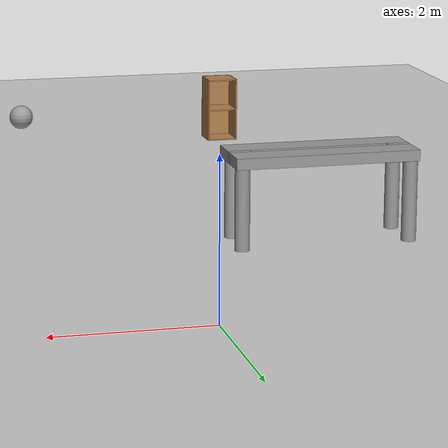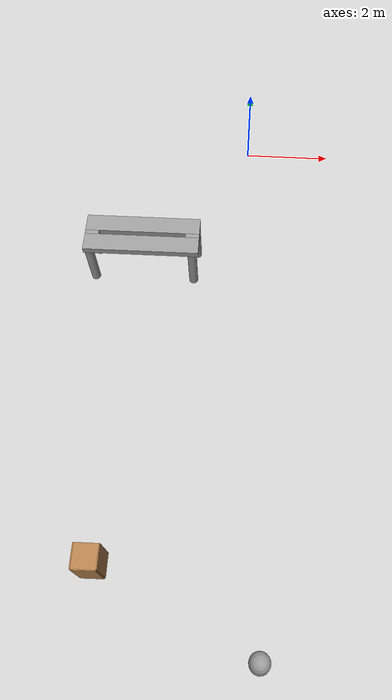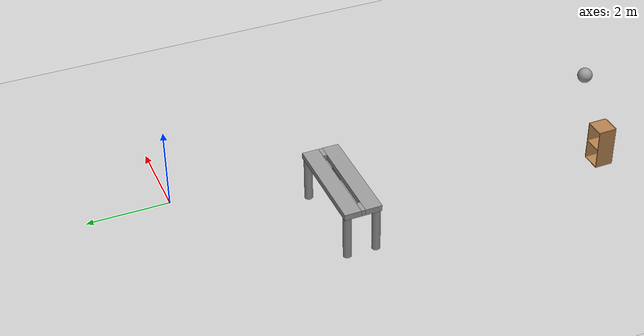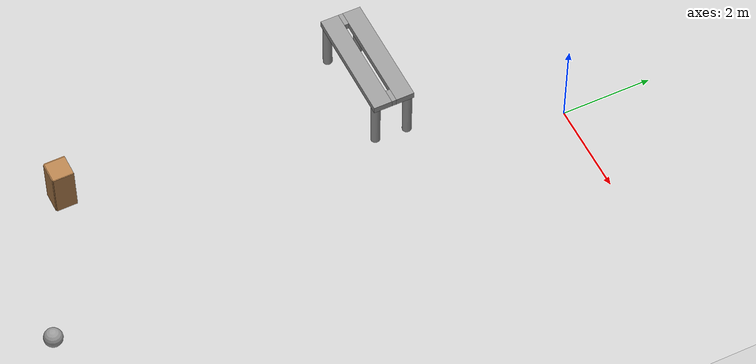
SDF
<sdf version="1.6">
 <world name="default">
  <model name="ground_plane">
   <static>1</static>
   <link name="link">
    <collision name="collision">
     <geometry><plane><normal>0 0 1</normal><size>100 100</size></plane></geometry>
     <surface><friction><ode><mu>100</mu><mu2>50</mu2></ode></friction></surface>
    </collision>
    <visual name="visual">
     <cast_shadows>0</cast_shadows>
     <geometry><plane><normal>0 0 1</normal><size>100 100</size></plane></geometry>
     <material>
      <script><uri>file://media/materials/scripts/gazebo.material</uri><name>Gazebo/Grey</name></script>
     </material>
    </visual>
   </link>
  </model>
  <model name="work_table_1">
   <link name="link_0">
    <pose>1.115 -0.35 -0.3125 0 -0 0</pose>
    <inertial>
     <mass>1</mass>
     <inertia><ixx>0.145833</ixx><ixy>0</ixy><ixz>0</ixz><iyy>0.145833</iyy><iyz>0</iyz><izz>0.125</izz></inertia>
    </inertial>
    <visual name="visual">
     <geometry><cylinder><radius>0.1</radius><length>1.1</length></cylinder></geometry>
     <material>
      <lighting>1</lighting>
      <script><uri>file://media/materials/scripts/gazebo.material</uri><name>Gazebo/Grey</name></script>
      <ambient>0.3 0.3 0.3 1</ambient>
      <diffuse>0.7 0.7 0.7 1</diffuse>
      <specular>0.01 0.01 0.01 1</specular>
      <emissive>0 0 0 1</emissive>
      <shader type="vertex"><normal_map>__default__</normal_map></shader>
     </material>
    </visual>
    <collision name="collision">
     <geometry><cylinder><radius>0.1</radius><length>1.1</length></cylinder></geometry>
     <surface>
      <friction>
       <ode><mu>1</mu><mu2>1</mu2><fdir1>0 0 0</fdir1><slip1>0</slip1><slip2>0</slip2></ode>
       <torsional>
        <coefficient>1</coefficient>
        <patch_radius>0</patch_radius>
        <surface_radius>0</surface_radius>
        <use_patch_radius>1</use_patch_radius>
        <ode><slip>0</slip></ode>
       </torsional>
      </friction>
      <bounce><restitution_coefficient>0</restitution_coefficient><threshold>1e+06</threshold></bounce>
      <contact>
       <collide_without_contact>0</collide_without_contact>
       <collide_without_contact_bitmask>1</collide_without_contact_bitmask>
       <collide_bitmask>1</collide_bitmask>
       <ode>
        <soft_cfm>0</soft_cfm>
        <soft_erp>0.2</soft_erp>
        <kp>1e+13</kp>
        <kd>1</kd>
        <max_vel>0.01</max_vel>
        <min_depth>0</min_depth>
       </ode>
       <bullet>
        <split_impulse>1</split_impulse>
        <split_impulse_penetration_threshold>-0.01</split_impulse_penetration_threshold>
        <soft_cfm>0</soft_cfm>
        <soft_erp>0.2</soft_erp>
        <kp>1e+13</kp>
        <kd>1</kd>
       </bullet>
      </contact>
     </surface>
    </collision>
   </link>
   <link name="link_0_clone">
    <pose>-1.145 -0.35 -0.3125 0 -0 0</pose>
    <inertial>
     <mass>1</mass>
     <inertia><ixx>0.145833</ixx><ixy>0</ixy><ixz>0</ixz><iyy>0.145833</iyy><iyz>0</iyz><izz>0.125</izz></inertia>
    </inertial>
    <visual name="visual">
     <geometry><cylinder><radius>0.1</radius><length>1.1</length></cylinder></geometry>
     <material>
      <lighting>1</lighting>
      <script><uri>file://media/materials/scripts/gazebo.material</uri><name>Gazebo/Grey</name></script>
      <ambient>0.3 0.3 0.3 1</ambient>
      <diffuse>0.7 0.7 0.7 1</diffuse>
      <specular>0.01 0.01 0.01 1</specular>
      <emissive>0 0 0 1</emissive>
      <shader type="vertex"><normal_map>__default__</normal_map></shader>
     </material>
    </visual>
    <collision name="collision">
     <geometry><cylinder><radius>0.1</radius><length>1.1</length></cylinder></geometry>
     <surface>
      <friction>
       <ode><mu>1</mu><mu2>1</mu2><fdir1>0 0 0</fdir1><slip1>0</slip1><slip2>0</slip2></ode>
       <torsional>
        <coefficient>1</coefficient>
        <patch_radius>0</patch_radius>
        <surface_radius>0</surface_radius>
        <use_patch_radius>1</use_patch_radius>
        <ode><slip>0</slip></ode>
       </torsional>
      </friction>
      <bounce><restitution_coefficient>0</restitution_coefficient><threshold>1e+06</threshold></bounce>
      <contact>
       <collide_without_contact>0</collide_without_contact>
       <collide_without_contact_bitmask>1</collide_without_contact_bitmask>
       <collide_bitmask>1</collide_bitmask>
       <ode>
        <soft_cfm>0</soft_cfm>
        <soft_erp>0.2</soft_erp>
        <kp>1e+13</kp>
        <kd>1</kd>
        <max_vel>0.01</max_vel>
        <min_depth>0</min_depth>
       </ode>
       <bullet>
        <split_impulse>1</split_impulse>
        <split_impulse_penetration_threshold>-0.01</split_impulse_penetration_threshold>
        <soft_cfm>0</soft_cfm>
        <soft_erp>0.2</soft_erp>
        <kp>1e+13</kp>
        <kd>1</kd>
       </bullet>
      </contact>
     </surface>
    </collision>
   </link>
   <link name="link_0_clone_0">
    <pose>-1.145 0.35 -0.3125 0 -0 0</pose>
    <inertial>
     <mass>1</mass>
     <inertia><ixx>0.145833</ixx><ixy>0</ixy><ixz>0</ixz><iyy>0.145833</iyy><iyz>0</iyz><izz>0.125</izz></inertia>
    </inertial>
    <visual name="visual">
     <geometry><cylinder><radius>0.1</radius><length>1.1</length></cylinder></geometry>
     <material>
      <lighting>1</lighting>
      <script><uri>file://media/materials/scripts/gazebo.material</uri><name>Gazebo/Grey</name></script>
      <ambient>0.3 0.3 0.3 1</ambient>
      <diffuse>0.7 0.7 0.7 1</diffuse>
      <specular>0.01 0.01 0.01 1</specular>
      <emissive>0 0 0 1</emissive>
      <shader type="vertex"><normal_map>__default__</normal_map></shader>
     </material>
    </visual>
    <collision name="collision">
     <geometry><cylinder><radius>0.1</radius><length>1.1</length></cylinder></geometry>
     <surface>
      <friction>
       <ode><mu>1</mu><mu2>1</mu2><fdir1>0 0 0</fdir1><slip1>0</slip1><slip2>0</slip2></ode>
       <torsional>
        <coefficient>1</coefficient>
        <patch_radius>0</patch_radius>
        <surface_radius>0</surface_radius>
        <use_patch_radius>1</use_patch_radius>
        <ode><slip>0</slip></ode>
       </torsional>
      </friction>
      <bounce><restitution_coefficient>0</restitution_coefficient><threshold>1e+06</threshold></bounce>
      <contact>
       <collide_without_contact>0</collide_without_contact>
       <collide_without_contact_bitmask>1</collide_without_contact_bitmask>
       <collide_bitmask>1</collide_bitmask>
       <ode>
        <soft_cfm>0</soft_cfm>
        <soft_erp>0.2</soft_erp>
        <kp>1e+13</kp>
        <kd>1</kd>
        <max_vel>0.01</max_vel>
        <min_depth>0</min_depth>
       </ode>
       <bullet>
        <split_impulse>1</split_impulse>
        <split_impulse_penetration_threshold>-0.01</split_impulse_penetration_threshold>
        <soft_cfm>0</soft_cfm>
        <soft_erp>0.2</soft_erp>
        <kp>1e+13</kp>
        <kd>1</kd>
       </bullet>
      </contact>
     </surface>
    </collision>
   </link>
   <link name="link_0_clone_1">
    <pose>1.155 0.35 -0.3125 0 -0 0</pose>
    <inertial>
     <mass>1</mass>
     <inertia><ixx>0.145833</ixx><ixy>0</ixy><ixz>0</ixz><iyy>0.145833</iyy><iyz>0</iyz><izz>0.125</izz></inertia>
    </inertial>
    <visual name="visual">
     <geometry><cylinder><radius>0.1</radius><length>1.1</length></cylinder></geometry>
     <material>
      <lighting>1</lighting>
      <script><uri>file://media/materials/scripts/gazebo.material</uri><name>Gazebo/Grey</name></script>
      <ambient>0.3 0.3 0.3 1</ambient>
      <diffuse>0.7 0.7 0.7 1</diffuse>
      <specular>0.01 0.01 0.01 1</specular>
      <emissive>0 0 0 1</emissive>
      <shader type="vertex"><normal_map>__default__</normal_map></shader>
     </material>
    </visual>
    <collision name="collision">
     <geometry><cylinder><radius>0.1</radius><length>1.1</length></cylinder></geometry>
     <surface>
      <friction>
       <ode><mu>1</mu><mu2>1</mu2><fdir1>0 0 0</fdir1><slip1>0</slip1><slip2>0</slip2></ode>
       <torsional>
        <coefficient>1</coefficient>
        <patch_radius>0</patch_radius>
        <surface_radius>0</surface_radius>
        <use_patch_radius>1</use_patch_radius>
        <ode><slip>0</slip></ode>
       </torsional>
      </friction>
      <bounce><restitution_coefficient>0</restitution_coefficient><threshold>1e+06</threshold></bounce>
      <contact>
       <collide_without_contact>0</collide_without_contact>
       <collide_without_contact_bitmask>1</collide_without_contact_bitmask>
       <collide_bitmask>1</collide_bitmask>
       <ode>
        <soft_cfm>0</soft_cfm>
        <soft_erp>0.2</soft_erp>
        <kp>1e+13</kp>
        <kd>1</kd>
        <max_vel>0.01</max_vel>
        <min_depth>0</min_depth>
       </ode>
       <bullet>
        <split_impulse>1</split_impulse>
        <split_impulse_penetration_threshold>-0.01</split_impulse_penetration_threshold>
        <soft_cfm>0</soft_cfm>
        <soft_erp>0.2</soft_erp>
        <kp>1e+13</kp>
        <kd>1</kd>
       </bullet>
      </contact>
     </surface>
    </collision>
   </link>
   <link name="link_1">
    <pose>0.005 -0.25 0.3125 0 -0 0</pose>
    <inertial>
     <mass>1</mass>
     <inertia>
      <ixx>0.166667</ixx>
      <ixy>0</ixy>
      <ixz>0</ixz>
      <iyy>0.166667</iyy>
      <iyz>0</iyz>
      <izz>0.166667</izz>
     </inertia>
    </inertial>
    <visual name="visual">
     <geometry><box><size>2.5 0.4 0.15</size></box></geometry>
     <material>
      <lighting>1</lighting>
      <script><uri>file://media/materials/scripts/gazebo.material</uri><name>Gazebo/Grey</name></script>
      <ambient>0.3 0.3 0.3 1</ambient>
      <diffuse>0.7 0.7 0.7 1</diffuse>
      <specular>0.01 0.01 0.01 1</specular>
      <emissive>0 0 0 1</emissive>
      <shader type="vertex"><normal_map>__default__</normal_map></shader>
     </material>
    </visual>
    <collision name="collision">
     <geometry><box><size>2.5 0.4 0.15</size></box></geometry>
     <surface>
      <friction>
       <ode><mu>1</mu><mu2>1</mu2><fdir1>0 0 0</fdir1><slip1>0</slip1><slip2>0</slip2></ode>
       <torsional>
        <coefficient>1</coefficient>
        <patch_radius>0</patch_radius>
        <surface_radius>0</surface_radius>
        <use_patch_radius>1</use_patch_radius>
        <ode><slip>0</slip></ode>
       </torsional>
      </friction>
      <bounce><restitution_coefficient>0</restitution_coefficient><threshold>1e+06</threshold></bounce>
      <contact>
       <collide_without_contact>0</collide_without_contact>
       <collide_without_contact_bitmask>1</collide_without_contact_bitmask>
       <collide_bitmask>1</collide_bitmask>
       <ode>
        <soft_cfm>0</soft_cfm>
        <soft_erp>0.2</soft_erp>
        <kp>1e+13</kp>
        <kd>1</kd>
        <max_vel>0.01</max_vel>
        <min_depth>0</min_depth>
       </ode>
       <bullet>
        <split_impulse>1</split_impulse>
        <split_impulse_penetration_threshold>-0.01</split_impulse_penetration_threshold>
        <soft_cfm>0</soft_cfm>
        <soft_erp>0.2</soft_erp>
        <kp>1e+13</kp>
        <kd>1</kd>
       </bullet>
      </contact>
     </surface>
    </collision>
   </link>
   <link name="link_1_clone">
    <pose>0.005 0.25 0.3125 0 -0 0</pose>
    <inertial>
     <mass>1</mass>
     <inertia>
      <ixx>0.166667</ixx>
      <ixy>0</ixy>
      <ixz>0</ixz>
      <iyy>0.166667</iyy>
      <iyz>0</iyz>
      <izz>0.166667</izz>
     </inertia>
    </inertial>
    <visual name="visual">
     <geometry><box><size>2.5 0.4 0.15</size></box></geometry>
     <material>
      <lighting>1</lighting>
      <script><uri>file://media/materials/scripts/gazebo.material</uri><name>Gazebo/Grey</name></script>
      <ambient>0.3 0.3 0.3 1</ambient>
      <diffuse>0.7 0.7 0.7 1</diffuse>
      <specular>0.01 0.01 0.01 1</specular>
      <emissive>0 0 0 1</emissive>
      <shader type="vertex"><normal_map>__default__</normal_map></shader>
     </material>
    </visual>
    <collision name="collision">
     <geometry><box><size>2.5 0.4 0.15</size></box></geometry>
     <surface>
      <friction>
       <ode><mu>1</mu><mu2>1</mu2><fdir1>0 0 0</fdir1><slip1>0</slip1><slip2>0</slip2></ode>
       <torsional>
        <coefficient>1</coefficient>
        <patch_radius>0</patch_radius>
        <surface_radius>0</surface_radius>
        <use_patch_radius>1</use_patch_radius>
        <ode><slip>0</slip></ode>
       </torsional>
      </friction>
      <bounce><restitution_coefficient>0</restitution_coefficient><threshold>1e+06</threshold></bounce>
      <contact>
       <collide_without_contact>0</collide_without_contact>
       <collide_without_contact_bitmask>1</collide_without_contact_bitmask>
       <collide_bitmask>1</collide_bitmask>
       <ode>
        <soft_cfm>0</soft_cfm>
        <soft_erp>0.2</soft_erp>
        <kp>1e+13</kp>
        <kd>1</kd>
        <max_vel>0.01</max_vel>
        <min_depth>0</min_depth>
       </ode>
       <bullet>
        <split_impulse>1</split_impulse>
        <split_impulse_penetration_threshold>-0.01</split_impulse_penetration_threshold>
        <soft_cfm>0</soft_cfm>
        <soft_erp>0.2</soft_erp>
        <kp>1e+13</kp>
        <kd>1</kd>
       </bullet>
      </contact>
     </surface>
    </collision>
   </link>
   <link name="link_1_clone_0">
    <pose>-1.095 0 0.3125 0 -0 0</pose>
    <inertial>
     <mass>1</mass>
     <inertia>
      <ixx>0.166667</ixx>
      <ixy>0</ixy>
      <ixz>0</ixz>
      <iyy>0.166667</iyy>
      <iyz>0</iyz>
      <izz>0.166667</izz>
     </inertia>
    </inertial>
    <visual name="visual">
     <geometry><box><size>0.3 0.1 0.15</size></box></geometry>
     <material>
      <lighting>1</lighting>
      <script><uri>file://media/materials/scripts/gazebo.material</uri><name>Gazebo/Grey</name></script>
      <ambient>0.3 0.3 0.3 1</ambient>
      <diffuse>0.7 0.7 0.7 1</diffuse>
      <specular>0.01 0.01 0.01 1</specular>
      <emissive>0 0 0 1</emissive>
      <shader type="vertex"><normal_map>__default__</normal_map></shader>
     </material>
    </visual>
    <collision name="collision">
     <geometry><box><size>0.3 0.1 0.15</size></box></geometry>
     <surface>
      <friction>
       <ode><mu>1</mu><mu2>1</mu2><fdir1>0 0 0</fdir1><slip1>0</slip1><slip2>0</slip2></ode>
       <torsional>
        <coefficient>1</coefficient>
        <patch_radius>0</patch_radius>
        <surface_radius>0</surface_radius>
        <use_patch_radius>1</use_patch_radius>
        <ode><slip>0</slip></ode>
       </torsional>
      </friction>
      <bounce><restitution_coefficient>0</restitution_coefficient><threshold>1e+06</threshold></bounce>
      <contact>
       <collide_without_contact>0</collide_without_contact>
       <collide_without_contact_bitmask>1</collide_without_contact_bitmask>
       <collide_bitmask>1</collide_bitmask>
       <ode>
        <soft_cfm>0</soft_cfm>
        <soft_erp>0.2</soft_erp>
        <kp>1e+13</kp>
        <kd>1</kd>
        <max_vel>0.01</max_vel>
        <min_depth>0</min_depth>
       </ode>
       <bullet>
        <split_impulse>1</split_impulse>
        <split_impulse_penetration_threshold>-0.01</split_impulse_penetration_threshold>
        <soft_cfm>0</soft_cfm>
        <soft_erp>0.2</soft_erp>
        <kp>1e+13</kp>
        <kd>1</kd>
       </bullet>
      </contact>
     </surface>
    </collision>
   </link>
   <link name="link_1_clone_0_clone">
    <pose>1.105 0 0.3125 0 -0 0</pose>
    <inertial>
     <mass>1</mass>
     <inertia>
      <ixx>0.166667</ixx>
      <ixy>0</ixy>
      <ixz>0</ixz>
      <iyy>0.166667</iyy>
      <iyz>0</iyz>
      <izz>0.166667</izz>
     </inertia>
    </inertial>
    <visual name="visual">
     <geometry><box><size>0.3 0.1 0.15</size></box></geometry>
     <material>
      <lighting>1</lighting>
      <script><uri>file://media/materials/scripts/gazebo.material</uri><name>Gazebo/Grey</name></script>
      <ambient>0.3 0.3 0.3 1</ambient>
      <diffuse>0.7 0.7 0.7 1</diffuse>
      <specular>0.01 0.01 0.01 1</specular>
      <emissive>0 0 0 1</emissive>
      <shader type="vertex"><normal_map>__default__</normal_map></shader>
     </material>
    </visual>
    <collision name="collision">
     <geometry><box><size>0.3 0.1 0.15</size></box></geometry>
     <surface>
      <friction>
       <ode><mu>1</mu><mu2>1</mu2><fdir1>0 0 0</fdir1><slip1>0</slip1><slip2>0</slip2></ode>
       <torsional>
        <coefficient>1</coefficient>
        <patch_radius>0</patch_radius>
        <surface_radius>0</surface_radius>
        <use_patch_radius>1</use_patch_radius>
        <ode><slip>0</slip></ode>
       </torsional>
      </friction>
      <bounce><restitution_coefficient>0</restitution_coefficient><threshold>1e+06</threshold></bounce>
      <contact>
       <collide_without_contact>0</collide_without_contact>
       <collide_without_contact_bitmask>1</collide_without_contact_bitmask>
       <collide_bitmask>1</collide_bitmask>
       <ode>
        <soft_cfm>0</soft_cfm>
        <soft_erp>0.2</soft_erp>
        <kp>1e+13</kp>
        <kd>1</kd>
        <max_vel>0.01</max_vel>
        <min_depth>0</min_depth>
       </ode>
       <bullet>
        <split_impulse>1</split_impulse>
        <split_impulse_penetration_threshold>-0.01</split_impulse_penetration_threshold>
        <soft_cfm>0</soft_cfm>
        <soft_erp>0.2</soft_erp>
        <kp>1e+13</kp>
        <kd>1</kd>
       </bullet>
      </contact>
     </surface>
    </collision>
   </link>
   <joint name="link_1_JOINT_0" type="fixed">
    <parent>link_1</parent>
    <child>link_1_clone_0</child>
    <physics>
     <ode><limit><cfm>0</cfm><erp>0.2</erp></limit><suspension><cfm>0</cfm><erp>0.2</erp></suspension></ode>
    </physics>
   </joint>
   <joint name="link_1_JOINT_1" type="fixed">
    <parent>link_1</parent>
    <child>link_1_clone_0_clone</child>
    <physics>
     <ode><limit><cfm>0</cfm><erp>0.2</erp></limit><suspension><cfm>0</cfm><erp>0.2</erp></suspension></ode>
    </physics>
   </joint>
   <joint name="link_1_JOINT_2" type="fixed">
    <parent>link_1</parent>
    <child>link_1_clone</child>
    <physics>
     <ode><limit><cfm>0</cfm><erp>0.2</erp></limit><suspension><cfm>0</cfm><erp>0.2</erp></suspension></ode>
    </physics>
   </joint>
   <joint name="link_1_JOINT_3" type="fixed">
    <parent>link_1</parent>
    <child>link_0_clone</child>
    <physics>
     <ode><limit><cfm>0</cfm><erp>0.2</erp></limit><suspension><cfm>0</cfm><erp>0.2</erp></suspension></ode>
    </physics>
   </joint>
   <joint name="link_1_JOINT_4" type="fixed">
    <parent>link_1</parent>
    <child>link_0</child>
    <physics>
     <ode><limit><cfm>0</cfm><erp>0.2</erp></limit><suspension><cfm>0</cfm><erp>0.2</erp></suspension></ode>
    </physics>
   </joint>
   <joint name="link_1_clone_JOINT_5" type="fixed">
    <parent>link_1_clone</parent>
    <child>link_0_clone_0</child>
    <physics>
     <ode><limit><cfm>0</cfm><erp>0.2</erp></limit><suspension><cfm>0</cfm><erp>0.2</erp></suspension></ode>
    </physics>
   </joint>
   <joint name="link_1_clone_JOINT_6" type="fixed">
    <parent>link_1_clone</parent>
    <child>link_0_clone_1</child>
    <physics>
     <ode><limit><cfm>0</cfm><erp>0.2</erp></limit><suspension><cfm>0</cfm><erp>0.2</erp></suspension></ode>
    </physics>
   </joint>
   <static>0</static>
   <pose>-2.2297 -3.44627 0.8625 2e-06 -1e-06 0.004004</pose>
  </model>
  <model name="my_ball2">
   <link name="link_0">
    <inertial>
     <mass>1</mass>
     <inertia><ixx>0.1</ixx><ixy>0</ixy><ixz>0</ixz><iyy>0.1</iyy><iyz>0</iyz><izz>0.1</izz></inertia>
    </inertial>
    <visual name="visual">
     <geometry><sphere><radius>0.2</radius></sphere></geometry>
     <material>
      <lighting>1</lighting>
      <script><uri>file://media/materials/scripts/gazebo.material</uri><name>Gazebo/Grey</name></script>
      <ambient>1 1 1 1</ambient>
      <diffuse>1 1 1 1</diffuse>
      <specular>1 1 1 1</specular>
      <emissive>1 1 1 1</emissive>
      <shader type="vertex"><normal_map>__default__</normal_map></shader>
     </material>
    </visual>
    <collision name="collision">
     <geometry><sphere><radius>0.2</radius></sphere></geometry>
     <surface>
      <friction>
       <ode><mu>1</mu><mu2>1</mu2><fdir1>0 0 0</fdir1><slip1>0</slip1><slip2>0</slip2></ode>
       <torsional>
        <coefficient>1</coefficient>
        <patch_radius>0</patch_radius>
        <surface_radius>0</surface_radius>
        <use_patch_radius>1</use_patch_radius>
        <ode><slip>0</slip></ode>
       </torsional>
      </friction>
      <bounce><restitution_coefficient>0</restitution_coefficient><threshold>1e+06</threshold></bounce>
      <contact>
       <collide_without_contact>0</collide_without_contact>
       <collide_without_contact_bitmask>1</collide_without_contact_bitmask>
       <collide_bitmask>1</collide_bitmask>
       <ode>
        <soft_cfm>0</soft_cfm>
        <soft_erp>0.2</soft_erp>
        <kp>1e+13</kp>
        <kd>1</kd>
        <max_vel>0.01</max_vel>
        <min_depth>0</min_depth>
       </ode>
       <bullet>
        <split_impulse>1</split_impulse>
        <split_impulse_penetration_threshold>-0.01</split_impulse_penetration_threshold>
        <soft_cfm>0</soft_cfm>
        <soft_erp>0.2</soft_erp>
        <kp>1e+13</kp>
        <kd>1</kd>
       </bullet>
      </contact>
     </surface>
    </collision>
   </link>
   <static>0</static>
   <pose>0.624231 -11.6407 0.2 0 -0 0</pose>
  </model>
  <model name="cabinet_3_clone">
   <static>1</static>
   <link name="cabinet_bottom_plate">
    <inertial>
     <pose>0 0 -1 0 -0 0</pose>
     <inertia><ixx>2.05</ixx><ixy>0</ixy><ixz>0</ixz><iyy>2.05</iyy><iyz>0</iyz><izz>2.05</izz></inertia>
     <mass>25</mass>
    </inertial>
    <collision name="cabinet_bottom_plate_geom">
     <pose>0 0 0.01 0 -0 0</pose>
     <geometry><box><size>0.45 0.45 0.02</size></box></geometry>
    </collision>
    <visual name="cabinet_bottom_plate_geom_visual">
     <pose>0 0 0.01 0 -0 0</pose>
     <geometry><box><size>0.45 0.45 0.02</size></box></geometry>
     <material>
      <script><uri>file://media/materials/scripts/gazebo.material</uri><name>Gazebo/Wood</name></script>
     </material>
    </visual>
    <collision name="cabinet_bottom_plate_geom_cabinet_back_plate">
     <pose>0.235 0 0.51 0 -0 0</pose>
     <geometry><box><size>0.02 0.45 1.02</size></box></geometry>
    </collision>
    <visual name="cabinet_bottom_plate_geom_cabinet_back_plate_visual">
     <pose>0.235 0 0.51 0 -0 0</pose>
     <geometry><box><size>0.02 0.45 1.02</size></box></geometry>
     <material>
      <script><uri>file://media/materials/scripts/gazebo.material</uri><name>Gazebo/Wood</name></script>
     </material>
    </visual>
    <collision name="cabinet_bottom_plate_geom_cabinet_left_plate">
     <pose>0 0.235 0.51 0 -0 0</pose>
     <geometry><box><size>0.45 0.02 1.02</size></box></geometry>
    </collision>
    <visual name="cabinet_bottom_plate_geom_cabinet_left_plate_visual">
     <pose>0 0.235 0.51 0 -0 0</pose>
     <geometry><box><size>0.45 0.02 1.02</size></box></geometry>
     <material>
      <script><uri>file://media/materials/scripts/gazebo.material</uri><name>Gazebo/Wood</name></script>
     </material>
    </visual>
    <collision name="cabinet_bottom_plate_geom_cabinet_middle_plate">
     <pose>0 0 0.51 0 -0 0</pose>
     <geometry><box><size>0.45 0.45 0.02</size></box></geometry>
    </collision>
    <visual name="cabinet_bottom_plate_geom_cabinet_middle_plate_visual">
     <pose>0 0 0.51 0 -0 0</pose>
     <geometry><box><size>0.45 0.45 0.02</size></box></geometry>
     <material>
      <script><uri>file://media/materials/scripts/gazebo.material</uri><name>Gazebo/Wood</name></script>
     </material>
    </visual>
    <collision name="cabinet_bottom_plate_geom_cabinet_right_plate">
     <pose>0 -0.235 0.51 0 -0 0</pose>
     <geometry><box><size>0.45 0.02 1.02</size></box></geometry>
    </collision>
    <visual name="cabinet_bottom_plate_geom_cabinet_right_plate_visual">
     <pose>0 -0.235 0.51 0 -0 0</pose>
     <geometry><box><size>0.45 0.02 1.02</size></box></geometry>
     <material>
      <script><uri>file://media/materials/scripts/gazebo.material</uri><name>Gazebo/Wood</name></script>
     </material>
    </visual>
    <collision name="cabinet_bottom_plate_geom_cabinet_top_plate">
     <pose>0 0 1.01 0 -0 0</pose>
     <geometry><box><size>0.45 0.45 0.02</size></box></geometry>
    </collision>
    <visual name="cabinet_bottom_plate_geom_cabinet_top_plate_visual">
     <pose>0 0 1.01 0 -0 0</pose>
     <geometry><box><size>0.45 0.45 0.02</size></box></geometry>
     <material>
      <script><uri>file://media/materials/scripts/gazebo.material</uri><name>Gazebo/Wood</name></script>
     </material>
    </visual>
   </link>
   <pose>-2.51927 -10.151 0 0 0 -1.55805</pose>
  </model>
 </world>
</sdf>
